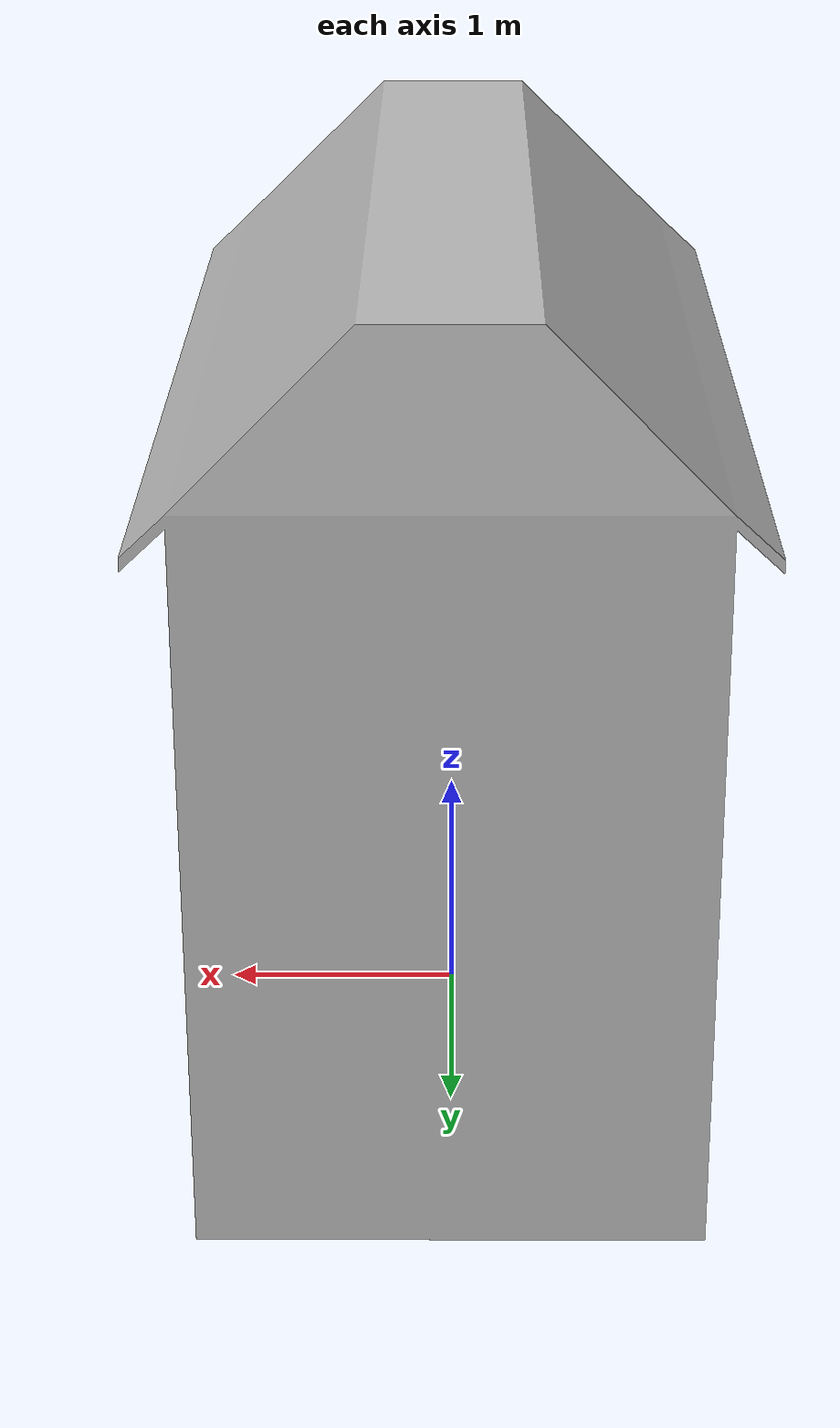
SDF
<?xml version="1.0" ?>
<sdf version="1.6">

  <model name="house">
      <pose>0 0 0  0 0 0</pose>
      <static>false</static>
      <link name="house">

        <inertial>
          <mass>100</mass>
        </inertial>

        <collision name="collision">
          <pose>0 0 1.85 0 0 0</pose>
          <geometry>
          <box>
            <size>2.35 4 3.7</size>
          </box>
          </geometry>
        </collision>

        <visual name="visual">
          <geometry>
            <mesh>
              <uri>model://landscape/house/meshes/house.dae</uri>
            </mesh>
          </geometry>
          <material>
            <script>
              <uri>model://landscape/house/materials/scripts/house.material</uri>
              <name>house</name>
            </script>
          </material>
        </visual>
      </link>
    </model>
</sdf>
